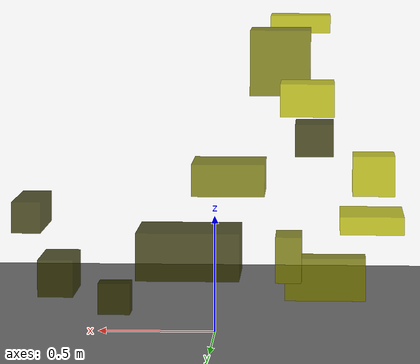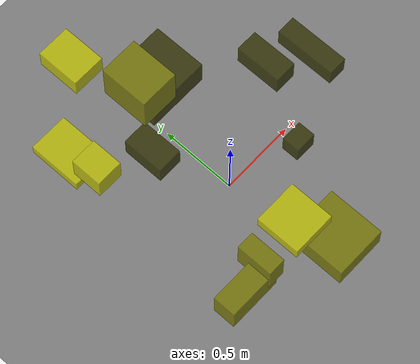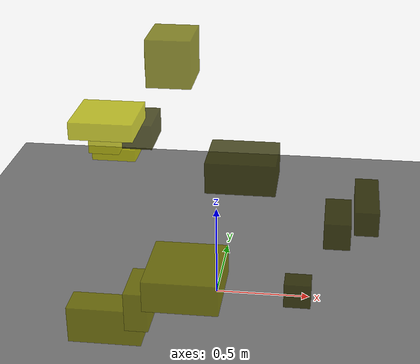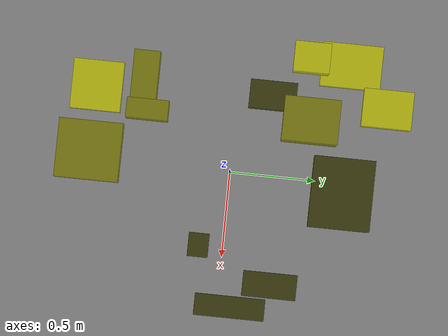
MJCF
<?xml version="1.0"?>
<mujoco model="obstacle_scene">
  <compiler angle="radian" coordinate="local"/>
  <option timestep="0.001" gravity="0 0 -9.81"/>

  <asset>
    <material name="obstacle_mat" rgba="0.8 0.8 0.0 0.8"/>
    <material name="ground_mat" rgba="0.5 0.5 0.5 1"/>
  </asset>

  <worldbody>
    <!-- Ground plane -->
    <geom name="ground" type="plane" size="3 3 0.1" material="ground_mat"/>

    <!-- Obstacles -->
    <body name="obstacle_0" pos="-0.422408 0.196718 0.858705">
      <geom name="obs_0" type="box" size="0.078572 0.130211 0.065943" rgba="0.2 0.2 0.0 0.8"/>
    </body>
    <body name="obstacle_1" pos="-0.027518 -0.806961 0.576882">
      <geom name="obs_1" type="box" size="0.166757 0.181024 0.072900" rgba="0.5 0.5 0.0 0.8"/>
    </body>
    <body name="obstacle_2" pos="-0.396151 0.822929 1.075531">
      <geom name="obs_2" type="box" size="0.103625 0.135180 0.062056" rgba="0.8 0.8 0.0 0.8"/>
    </body>
    <body name="obstacle_3" pos="0.071618 0.647511 0.446577">
      <geom name="obs_3" type="box" size="0.203832 0.174985 0.094055" rgba="0.2 0.2 0.0 0.8"/>
    </body>
    <body name="obstacle_4" pos="-0.307614 -0.513413 0.250251">
      <geom name="obs_4" type="box" size="0.058180 0.121250 0.102370" rgba="0.5 0.5 0.0 0.8"/>
    </body>
    <body name="obstacle_5" pos="-0.663656 0.395512 0.731791">
      <geom name="obs_5" type="box" size="0.084602 0.100516 0.080606" rgba="0.8 0.8 0.0 0.8"/>
    </body>
    <body name="obstacle_6" pos="0.635493 0.292404 0.297534">
      <geom name="obs_6" type="box" size="0.072955 0.155372 0.076252" rgba="0.2 0.2 0.0 0.8"/>
    </body>
    <body name="obstacle_7" pos="-0.285163 0.410582 1.191525">
      <geom name="obs_7" type="box" size="0.120323 0.150484 0.130052" rgba="0.5 0.5 0.0 0.8"/>
    </body>
    <body name="obstacle_8" pos="-0.651299 0.626863 0.572439">
      <geom name="obs_8" type="box" size="0.125139 0.170490 0.034658" rgba="0.8 0.8 0.0 0.8"/>
    </body>
    <body name="obstacle_9" pos="0.776842 0.074379 0.524913">
      <geom name="obs_9" type="box" size="0.060887 0.199652 0.064891" rgba="0.2 0.2 0.0 0.8"/>
    </body>
    <body name="obstacle_10" pos="-0.471685 -0.549046 0.151018">
      <geom name="obs_10" type="box" size="0.181137 0.075569 0.095476" rgba="0.5 0.5 0.0 0.8"/>
    </body>
    <body name="obstacle_11" pos="-0.354674 -0.753371 1.288198">
      <geom name="obs_11" type="box" size="0.133679 0.135020 0.037582" rgba="0.8 0.8 0.0 0.8"/>
    </body>
    <body name="obstacle_12" pos="0.443819 -0.141744 0.122555">
      <geom name="obs_12" type="box" size="0.070101 0.059482 0.067347" rgba="0.2 0.2 0.0 0.8"/>
    </body>
  </worldbody>
</mujoco>
